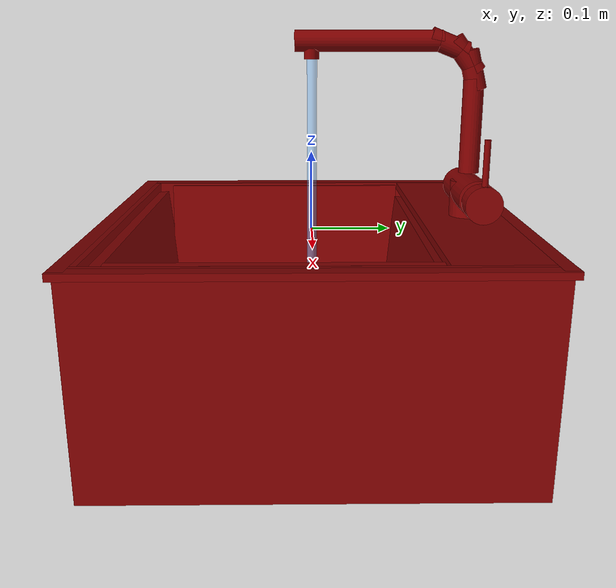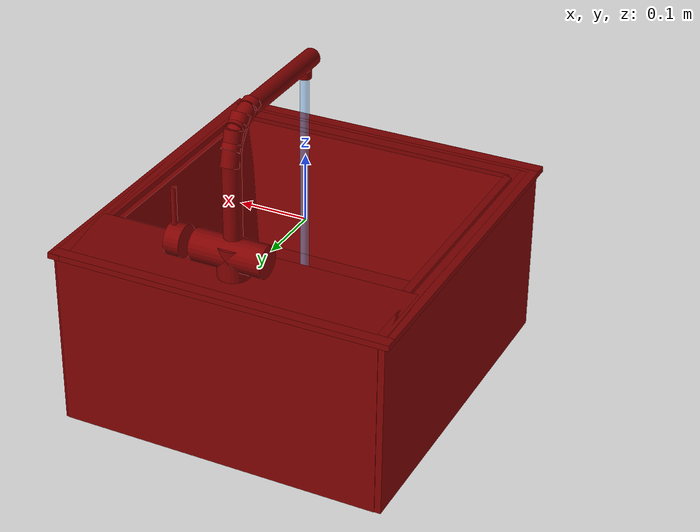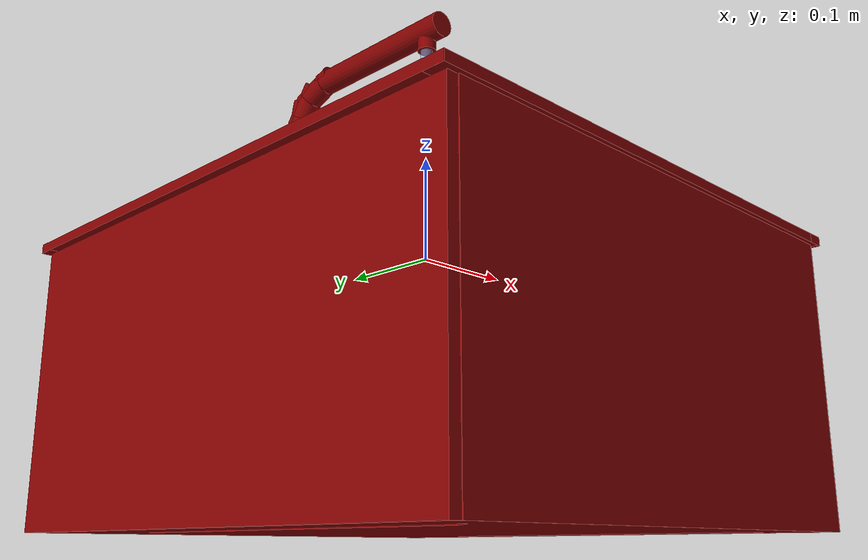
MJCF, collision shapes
<?xml version='1.0' encoding='UTF-8'?>
<mujoco model="model">
  <option timestep="0.002" gravity="0.0 0.0 -9.81"/>
  <compiler angle="radian"/>
  <asset>
    <mesh file="visuals/handle.obj" name="handle_vis"/>
    <mesh file="visuals/Body001.obj" name="Body001_vis"/>
    <mesh file="visuals/spout.obj" name="spout_vis"/>
    <texture file="visuals/T_BC001.png" name="Body001_material" type="2d"/>
    <material name="Body001_material" rgba="1 1 1 1.0" texture="Body001_material" shininess="0.1" specular="2"/>
    <texture file="visuals/T_BC001.png" name="handle_material" type="2d"/>
    <material name="handle_material" rgba="1 1 1 1.0" texture="handle_material" shininess="0.1" specular="2"/>
    <texture file="visuals/T_BC001.png" name="spout_material" type="2d"/>
    <material name="spout_material" rgba="1 1 1 1.0" texture="spout_material" shininess="0.1" specular="2"/>
  </asset>
  <default>
    <default class="visual">
      <geom conaffinity="0" contype="0" group="1" type="mesh"/>
    </default>
    <default class="collision">
      <geom group="0" rgba="0.5 0 0 0.5" solimp="0.998 0.998 0.001" solref="0.001 2"/>
    </default>
    <default class="spawn">
      <geom group="0" rgba="1 1 1 0.5" contype="0" conaffinity="0"/>
      <site group="0" rgba="1 1 1 0.5"/>
    </default>
    <default class="region">
      <geom group="1" conaffinity="0" contype="0" rgba="0 1 0 0"/>
    </default>
  </default>
  <worldbody>
    <body>
      <body name="object">
        <geom mesh="Body001_vis" type="mesh" solimp="0.998 0.998 0.001" solref="0.001 1" friction="0.95 0.3 0.1" class="visual" material="Body001_material"/>
        <geom class="collision" type="box" pos="-0.23356184363365173 -2.6807390440808376e-07 -0.1150500550866127" size="0.008296264335513115 0.2596202492713928 0.1327286660671234" quat="1.0 0.0 0.0 0.0"/>
        <geom class="collision" type="box" pos="0.23371736705303192 -2.6807390440808376e-07 -0.1150500550866127" size="0.008736610412597656 0.2596202492713928 0.1327286660671234" quat="1.0 0.0 0.0 0.0"/>
        <geom class="collision" type="box" pos="0.0030584409832954407 -0.2499607801437378 -0.1150500550866127" size="0.2358344942331314 0.010839504189789295 0.13272863626480103" quat="1.0 0.0 0.0 0.0"/>
        <geom class="collision" type="box" pos="0.0030584409832954407 0.2537139356136322 -0.11532757431268692" size="0.23583512008190155 0.006797631271183491 0.1324511170387268" quat="1.0 0.0 0.0 0.0"/>
        <geom class="collision" type="box" pos="0.0030584409832954407 0.1276591718196869 -0.11224254220724106" size="0.005302014295011759 0.20624402165412903 0.11287185549736023" quat="0.036606963723897934 0.7061585783958435 0.7061585783958435 -0.03660690039396286"/>
        <geom class="collision" type="box" pos="0.0030584412161260843 -0.21895095705986023 -0.11246468871831894" size="0.0073319533839821815 0.21064023673534393 0.12072356045246124" quat="0.03493489325046539 -0.7062432169914246 -0.7062433362007141 -0.03493494540452957"/>
        <geom class="collision" type="box" pos="-0.19945518672466278 -0.040441274642944336 -0.11609373986721039" size="0.005518236663192511 0.1761256605386734 0.13290388882160187" quat="7.538027091413824e-08 0.9984419941902161 -4.212775461809315e-09 0.055799901485443115"/>
        <geom class="collision" type="box" pos="0.19890040159225464 -0.040441274642944336 -0.11591848731040955" size="0.004599577747285366 0.1761256605386734 0.13290388882160187" quat="0.9984419941902161 0.0 0.05579989776015282 0.0"/>
        <geom class="collision" type="box" pos="0.0030584409832954407 -0.000232011079788208 -0.24096815288066864" size="0.23583975434303284 0.2589714229106903 0.006810608319938183" quat="1.0 0.0 0.0 0.0"/>
        <geom class="collision" type="box" pos="0.0007610097527503967 -0.04320057854056358 -0.1972455084323883" size="0.1778523027896881 0.15863630175590515 0.007855212315917015" quat="1.0 0.0 0.0 0.0"/>
        <geom class="collision" type="box" pos="0.0030584409832954407 0.19810841977596283 0.012630332261323929" size="0.23583976924419403 0.05932548642158508 0.005048235412687063" quat="1.0 0.0 0.0 0.0"/>
        <geom class="collision" type="cylinder" pos="0.0008517603273503482 0.20203258097171783 0.031043171882629395" size="0.02263602614402771 0.032472364604473114" quat="1.0 -8.146033536604591e-08 0.0 0.0"/>
        <geom class="collision" type="cylinder" pos="0.004111836664378643 0.20203258097171783 0.04953136667609215" size="0.02263602614402771 0.052698273211717606" quat="0.7071068286895752 -5.760115939779098e-08 0.7071067690849304 5.760115229236362e-08"/>
        <geom class="collision" type="box" pos="0.24023039638996124 -6.903064786456525e-10 0.013456849381327629" size="0.008810929954051971 0.2648913860321045 0.004221783019602299" quat="1.0 0.0 0.0 0.0"/>
        <geom class="collision" type="box" pos="-0.2402338981628418 8.046086804824881e-06 0.013460888527333736" size="0.008931607007980347 0.26441359519958496 0.004217738751322031" quat="1.0 0.0 0.0 0.0"/>
        <geom class="collision" type="box" pos="-0.0023004859685897827 -0.25572049617767334 0.013456874527037144" size="0.24679645895957947 0.009049708023667336 0.004221850074827671" quat="1.0 0.0 0.0 0.0"/>
        <geom class="collision" type="box" pos="-0.0023004859685897827 0.2558632493019104 0.013456853106617928" size="0.24679657816886902 0.008705460466444492 0.004221830517053604" quat="1.0 0.0 0.0 0.0"/>
        <body name="handle">
          <joint axis="1.0 0.0 0.0" pos="0.07896038144826889 0.2020242065191269 0.049925073981285095" limited="true" name="handle_temp_joint" type="hinge" range="-0.7853981633974483 0.7853981633974483" damping="0.5" frictionloss="1" armature="2"/>
          <joint axis="0.0 1.0 0.0" pos="0.07896038144826889 0.2020242065191269 0.049925073981285095" limited="true" name="handle_joint" type="hinge" range="0 0.5" damping="0.5" frictionloss="1" armature="2"/>
          <geom mesh="handle_vis" type="mesh" solimp="0.998 0.998 0.001" solref="0.001 1" friction="0.95 0.3 0.1" class="visual" material="handle_material"/>
          <geom class="collision" type="cylinder" pos="0.08255445957183838 0.20203258097171783 0.04953136667609215" size="0.02263602614402771 0.01148841343820095" quat="0.7071068286895752 -5.760115939779098e-08 0.7071067690849304 5.760115229236362e-08"/>
          <geom name="handle_main" class="collision" type="cylinder" pos="0.08758033066987991 0.20254206657409668 0.0986068919301033" size="0.0038201643619686365 0.027743283659219742" quat="1.0 -8.146033536604591e-08 0.0 0.0"/>
        </body>
        <body name="spout">
          <joint axis="0.0 0.0 1.0" pos="0.000901303777936846 0.20278413593769073 0.15556210279464722" limited="true" name="spout_joint" range="-0.7853981633974483 0.7853981633974483" type="hinge" damping="10"/>
          <site type="cylinder" rgba="0.5 0.75 1 0.5" size="0.006213285028934479 0.22314435243606567" pos="0.001067635603249073 0.00037171365693211555 -0.0006376374512910843" name="water"/>
          <geom mesh="spout_vis" type="mesh" solimp="0.998 0.998 0.001" solref="0.001 1" friction="0.95 0.3 0.1" class="visual" material="spout_material"/>
          <geom class="collision" type="cylinder" pos="0.0011019762605428696 0.2018282413482666 0.1327592134475708" size="0.012858516536653042 0.05865353345870972" quat="1.0 -8.146033536604591e-08 0.0 0.0"/>
          <geom class="collision" type="cylinder" pos="0.0009104841738007963 -0.00013754557585343719 0.22098270058631897" size="0.009285930544137955 0.0064205266535282135" quat="1.0 -8.146033536604591e-08 0.0 0.0"/>
          <geom class="collision" type="cylinder" pos="0.0011019762605428696 0.19932816922664642 0.20134544372558594" size="0.012858516536653042 0.024497201666235924" quat="0.9920640587806702 0.12573324143886566 0.0 0.0"/>
          <geom class="collision" type="cylinder" pos="0.0011019762605428696 0.18931762874126434 0.21816012263298035" size="0.012858516536653042 0.024497203528881073" quat="0.9472011923789978 0.32063978910446167 0.0 0.0"/>
          <geom class="collision" type="cylinder" pos="0.0011019762605428696 0.1683201789855957 0.23184886574745178" size="0.012858516536653042 0.024497201666235924" quat="0.826365053653717 0.5631347894668579 0.0 0.0"/>
          <geom class="collision" type="cylinder" pos="0.0011019762605428696 0.07001488655805588 0.23639380931854248" size="0.012858516536653042 0.09095170348882675" quat="0.7071067094802856 0.70710688829422 0.0 0.0" name="spout_main"/>
        </body>
        <geom class="region" name="reg_basin" type="box" pos="5.361437797546387e-05 -0.04405975341796875 -0.08324193209409714" size="0.1791754046678543 0.15094169771671295 0.10113153403997421"/>
        <geom class="region" name="reg_main" type="box" pos="-3.725290298461914e-09 0.0 -0.1150500625371933" size="0.2502935210466385 0.2658911476135254 0.13372865116596222"/>
      </body>
    </body>
  </worldbody>
  <actuator>
    <motor name="handle_joint_actuator" joint="handle_joint" gear="10"/>
    <motor name="handle_temp_joint_actuator" joint="handle_temp_joint" gear="10"/>
    <motor name="spout_joint_actuator" joint="spout_joint" gear="10"/>
  </actuator>
</mujoco>
